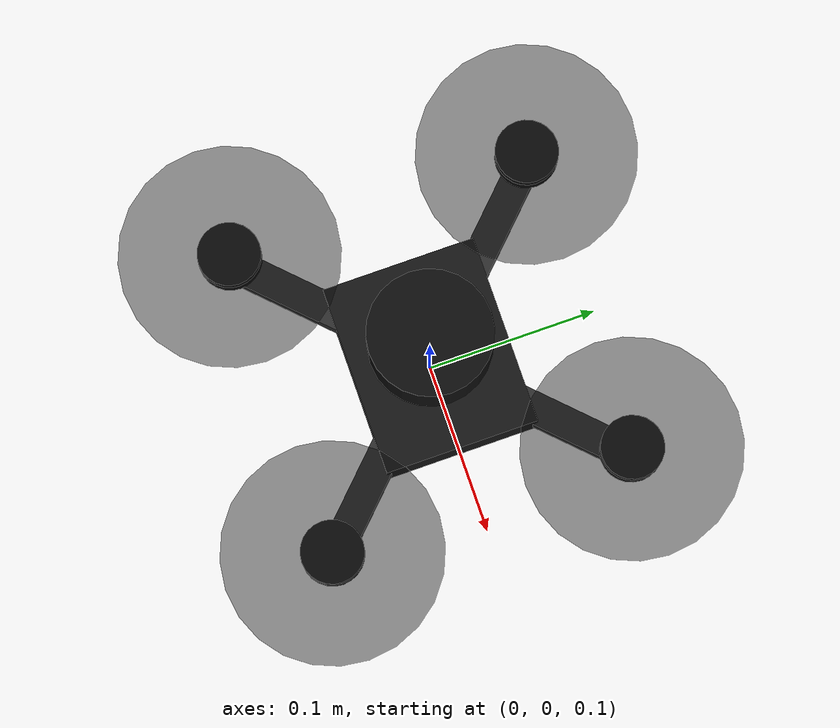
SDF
<?xml version="1.0" encoding="UTF-8"?>

<sdf version="1.9">
  <model name="x250_mid360">
    <pose>0 0 0.14 0 0 0</pose>
    <self_collide>false</self_collide>
    <static>false</static>

    <link name="base_link">
      <inertial>
        <mass>0.45</mass>
        <inertia>
          <ixx>0.0038</ixx>
          <ixy>0.0</ixy>
          <ixz>0.0</ixz>
          <iyy>0.0038</iyy>
          <iyz>0.0</iyz>
          <izz>0.0068</izz>
        </inertia>
      </inertial>
      <gravity>true</gravity>
      <velocity_decay />

      <visual name="body_visual">
        <geometry>
          <box>
            <size>0.11 0.09 0.035</size>
          </box>
        </geometry>
        <material>
          <ambient>0.02 0.02 0.02 1.0</ambient>
          <diffuse>0.08 0.08 0.08 1.0</diffuse>
          <specular>0.2 0.2 0.2 1.0</specular>
        </material>
      </visual>
      <collision name="body_collision">
        <geometry>
          <box>
            <size>0.11 0.09 0.035</size>
          </box>
        </geometry>
      </collision>

      <visual name="arm_forward_left_backward_right">
        <pose>0 0 0 0 0 0.7853981634</pose>
        <geometry>
          <box>
            <size>0.255 0.018 0.014</size>
          </box>
        </geometry>
        <material>
          <ambient>0.1 0.1 0.1 1.0</ambient>
          <diffuse>0.18 0.18 0.18 1.0</diffuse>
        </material>
      </visual>
      <collision name="arm_forward_left_backward_right_collision">
        <pose>0 0 0 0 0 0.7853981634</pose>
        <geometry>
          <box>
            <size>0.255 0.018 0.014</size>
          </box>
        </geometry>
      </collision>

      <visual name="arm_forward_right_backward_left">
        <pose>0 0 0 0 0 -0.7853981634</pose>
        <geometry>
          <box>
            <size>0.255 0.018 0.014</size>
          </box>
        </geometry>
        <material>
          <ambient>0.1 0.1 0.1 1.0</ambient>
          <diffuse>0.18 0.18 0.18 1.0</diffuse>
        </material>
      </visual>
      <collision name="arm_forward_right_backward_left_collision">
        <pose>0 0 0 0 0 -0.7853981634</pose>
        <geometry>
          <box>
            <size>0.255 0.018 0.014</size>
          </box>
        </geometry>
      </collision>

      <sensor name="air_pressure_sensor" type="air_pressure">
        <gz_frame_id>base_link</gz_frame_id>
        <always_on>1</always_on>
        <update_rate>50</update_rate>
        <air_pressure>
          <pressure>
            <noise type="gaussian">
              <mean>0</mean>
              <stddev>3</stddev>
            </noise>
          </pressure>
        </air_pressure>
      </sensor>

      <sensor name="magnetometer_sensor" type="magnetometer">
        <gz_frame_id>base_link</gz_frame_id>
        <always_on>1</always_on>
        <update_rate>100</update_rate>
        <magnetometer>
          <x><noise type="gaussian"><stddev>0.0001</stddev></noise></x>
          <y><noise type="gaussian"><stddev>0.0001</stddev></noise></y>
          <z><noise type="gaussian"><stddev>0.0001</stddev></noise></z>
        </magnetometer>
      </sensor>

      <sensor name="imu_sensor" type="imu">
        <gz_frame_id>base_link</gz_frame_id>
        <always_on>1</always_on>
        <update_rate>250</update_rate>
        <imu>
          <angular_velocity>
            <x><noise type="gaussian"><mean>0.0</mean><stddev>0.0008726646</stddev></noise></x>
            <y><noise type="gaussian"><mean>0.0</mean><stddev>0.0008726646</stddev></noise></y>
            <z><noise type="gaussian"><mean>0.0</mean><stddev>0.0008726646</stddev></noise></z>
          </angular_velocity>
          <linear_acceleration>
            <x><noise type="gaussian"><mean>0.0</mean><stddev>0.00637</stddev></noise></x>
            <y><noise type="gaussian"><mean>0.0</mean><stddev>0.00637</stddev></noise></y>
            <z><noise type="gaussian"><mean>0.0</mean><stddev>0.00686</stddev></noise></z>
          </linear_acceleration>
        </imu>
      </sensor>

      <sensor name="navsat_sensor" type="navsat">
        <gz_frame_id>base_link</gz_frame_id>
        <always_on>1</always_on>
        <update_rate>30</update_rate>
      </sensor>
    </link>

    <link name="rotor_0">
      <pose>0.0884 -0.0884 0.030 0 0 0</pose>
      <inertial>
        <mass>0.012</mass>
        <inertia>
          <ixx>1.0e-5</ixx>
          <iyy>1.0e-5</iyy>
          <izz>2.0e-5</izz>
        </inertia>
      </inertial>
      <visual name="motor_visual">
        <geometry><cylinder><radius>0.018</radius><length>0.018</length></cylinder></geometry>
        <material><ambient>0.03 0.03 0.03 1</ambient><diffuse>0.03 0.03 0.03 1</diffuse></material>
      </visual>
      <visual name="prop_visual">
        <geometry><cylinder><radius>0.063</radius><length>0.002</length></cylinder></geometry>
        <material><ambient>0.02 0.02 0.02 0.45</ambient><diffuse>0.02 0.02 0.02 0.45</diffuse></material>
      </visual>
      <collision name="prop_collision">
        <geometry><cylinder><radius>0.063</radius><length>0.002</length></cylinder></geometry>
      </collision>
    </link>

    <link name="rotor_1">
      <pose>-0.0884 0.0884 0.030 0 0 0</pose>
      <inertial>
        <mass>0.012</mass>
        <inertia>
          <ixx>1.0e-5</ixx>
          <iyy>1.0e-5</iyy>
          <izz>2.0e-5</izz>
        </inertia>
      </inertial>
      <visual name="motor_visual">
        <geometry><cylinder><radius>0.018</radius><length>0.018</length></cylinder></geometry>
        <material><ambient>0.03 0.03 0.03 1</ambient><diffuse>0.03 0.03 0.03 1</diffuse></material>
      </visual>
      <visual name="prop_visual">
        <geometry><cylinder><radius>0.063</radius><length>0.002</length></cylinder></geometry>
        <material><ambient>0.02 0.02 0.02 0.45</ambient><diffuse>0.02 0.02 0.02 0.45</diffuse></material>
      </visual>
      <collision name="prop_collision">
        <geometry><cylinder><radius>0.063</radius><length>0.002</length></cylinder></geometry>
      </collision>
    </link>

    <link name="rotor_2">
      <pose>0.0884 0.0884 0.030 0 0 0</pose>
      <inertial>
        <mass>0.012</mass>
        <inertia>
          <ixx>1.0e-5</ixx>
          <iyy>1.0e-5</iyy>
          <izz>2.0e-5</izz>
        </inertia>
      </inertial>
      <visual name="motor_visual">
        <geometry><cylinder><radius>0.018</radius><length>0.018</length></cylinder></geometry>
        <material><ambient>0.03 0.03 0.03 1</ambient><diffuse>0.03 0.03 0.03 1</diffuse></material>
      </visual>
      <visual name="prop_visual">
        <geometry><cylinder><radius>0.063</radius><length>0.002</length></cylinder></geometry>
        <material><ambient>0.02 0.02 0.02 0.45</ambient><diffuse>0.02 0.02 0.02 0.45</diffuse></material>
      </visual>
      <collision name="prop_collision">
        <geometry><cylinder><radius>0.063</radius><length>0.002</length></cylinder></geometry>
      </collision>
    </link>

    <link name="rotor_3">
      <pose>-0.0884 -0.0884 0.030 0 0 0</pose>
      <inertial>
        <mass>0.012</mass>
        <inertia>
          <ixx>1.0e-5</ixx>
          <iyy>1.0e-5</iyy>
          <izz>2.0e-5</izz>
        </inertia>
      </inertial>
      <visual name="motor_visual">
        <geometry><cylinder><radius>0.018</radius><length>0.018</length></cylinder></geometry>
        <material><ambient>0.03 0.03 0.03 1</ambient><diffuse>0.03 0.03 0.03 1</diffuse></material>
      </visual>
      <visual name="prop_visual">
        <geometry><cylinder><radius>0.063</radius><length>0.002</length></cylinder></geometry>
        <material><ambient>0.02 0.02 0.02 0.45</ambient><diffuse>0.02 0.02 0.02 0.45</diffuse></material>
      </visual>
      <collision name="prop_collision">
        <geometry><cylinder><radius>0.063</radius><length>0.002</length></cylinder></geometry>
      </collision>
    </link>

    <joint name="rotor_0_joint" type="revolute">
      <parent>base_link</parent>
      <child>rotor_0</child>
      <axis><xyz>0 0 1</xyz><limit><lower>-1e+16</lower><upper>1e+16</upper></limit></axis>
    </joint>
    <joint name="rotor_1_joint" type="revolute">
      <parent>base_link</parent>
      <child>rotor_1</child>
      <axis><xyz>0 0 1</xyz><limit><lower>-1e+16</lower><upper>1e+16</upper></limit></axis>
    </joint>
    <joint name="rotor_2_joint" type="revolute">
      <parent>base_link</parent>
      <child>rotor_2</child>
      <axis><xyz>0 0 1</xyz><limit><lower>-1e+16</lower><upper>1e+16</upper></limit></axis>
    </joint>
    <joint name="rotor_3_joint" type="revolute">
      <parent>base_link</parent>
      <child>rotor_3</child>
      <axis><xyz>0 0 1</xyz><limit><lower>-1e+16</lower><upper>1e+16</upper></limit></axis>
    </joint>

    <link name="mid360_link">
      <pose relative_to="base_link">0.0 0.0 0.090 0 0 0</pose>
      <inertial>
        <mass>0.265</mass>
        <inertia>
          <ixx>0.0004</ixx>
          <iyy>0.0004</iyy>
          <izz>0.0004</izz>
          <ixy>0.0</ixy>
          <ixz>0.0</ixz>
          <iyz>0.0</iyz>
        </inertia>
      </inertial>
      <visual name="mid360_visual">
        <geometry><cylinder><radius>0.035</radius><length>0.045</length></cylinder></geometry>
        <material><ambient>0.05 0.05 0.05 1</ambient><diffuse>0.05 0.05 0.05 1</diffuse></material>
      </visual>
      <collision name="mid360_collision">
        <geometry><cylinder><radius>0.035</radius><length>0.045</length></cylinder></geometry>
      </collision>
      <sensor name="mid360_lidar" type="gpu_lidar">
        <pose>0 0 0 0 0 0</pose>
        <topic>mid360/points</topic>
        <update_rate>10</update_rate>
        <always_on>true</always_on>
        <visualize>true</visualize>
        <ray>
          <scan>
            <horizontal>
              <samples>720</samples>
              <resolution>1</resolution>
              <min_angle>-3.141592653589793</min_angle>
              <max_angle>3.141592653589793</max_angle>
            </horizontal>
            <vertical>
              <samples>64</samples>
              <resolution>1</resolution>
              <min_angle>-0.1221730476</min_angle>
              <max_angle>0.9075712110</max_angle>
            </vertical>
          </scan>
          <range>
            <min>0.1</min>
            <max>40.0</max>
            <resolution>0.01</resolution>
          </range>
          <noise>
            <type>gaussian</type>
            <mean>0.0</mean>
            <stddev>0.01</stddev>
          </noise>
        </ray>
      </sensor>
    </link>

    <joint name="mid360_joint" type="fixed">
      <parent>base_link</parent>
      <child>mid360_link</child>
      <pose relative_to="base_link">0.0 0.0 0.090 0 0 0</pose>
    </joint>

    <plugin filename="gz-sim-multicopter-motor-model-system"
      name="gz::sim::systems::MulticopterMotorModel">
      <jointName>rotor_0_joint</jointName>
      <linkName>rotor_0</linkName>
      <turningDirection>ccw</turningDirection>
      <timeConstantUp>0.0125</timeConstantUp>
      <timeConstantDown>0.025</timeConstantDown>
      <maxRotVelocity>1100.0</maxRotVelocity>
      <motorConstant>2.50e-06</motorConstant>
      <momentConstant>0.016</momentConstant>
      <commandSubTopic>command/motor_speed</commandSubTopic>
      <motorNumber>0</motorNumber>
      <rotorDragCoefficient>3.0e-05</rotorDragCoefficient>
      <rollingMomentCoefficient>5.0e-07</rollingMomentCoefficient>
      <rotorVelocitySlowdownSim>10</rotorVelocitySlowdownSim>
      <motorType>velocity</motorType>
    </plugin>
    <plugin filename="gz-sim-multicopter-motor-model-system"
      name="gz::sim::systems::MulticopterMotorModel">
      <jointName>rotor_1_joint</jointName>
      <linkName>rotor_1</linkName>
      <turningDirection>ccw</turningDirection>
      <timeConstantUp>0.0125</timeConstantUp>
      <timeConstantDown>0.025</timeConstantDown>
      <maxRotVelocity>1100.0</maxRotVelocity>
      <motorConstant>2.50e-06</motorConstant>
      <momentConstant>0.016</momentConstant>
      <commandSubTopic>command/motor_speed</commandSubTopic>
      <motorNumber>1</motorNumber>
      <rotorDragCoefficient>3.0e-05</rotorDragCoefficient>
      <rollingMomentCoefficient>5.0e-07</rollingMomentCoefficient>
      <rotorVelocitySlowdownSim>10</rotorVelocitySlowdownSim>
      <motorType>velocity</motorType>
    </plugin>
    <plugin filename="gz-sim-multicopter-motor-model-system"
      name="gz::sim::systems::MulticopterMotorModel">
      <jointName>rotor_2_joint</jointName>
      <linkName>rotor_2</linkName>
      <turningDirection>cw</turningDirection>
      <timeConstantUp>0.0125</timeConstantUp>
      <timeConstantDown>0.025</timeConstantDown>
      <maxRotVelocity>1100.0</maxRotVelocity>
      <motorConstant>2.50e-06</motorConstant>
      <momentConstant>0.016</momentConstant>
      <commandSubTopic>command/motor_speed</commandSubTopic>
      <motorNumber>2</motorNumber>
      <rotorDragCoefficient>3.0e-05</rotorDragCoefficient>
      <rollingMomentCoefficient>5.0e-07</rollingMomentCoefficient>
      <rotorVelocitySlowdownSim>10</rotorVelocitySlowdownSim>
      <motorType>velocity</motorType>
    </plugin>
    <plugin filename="gz-sim-multicopter-motor-model-system"
      name="gz::sim::systems::MulticopterMotorModel">
      <jointName>rotor_3_joint</jointName>
      <linkName>rotor_3</linkName>
      <turningDirection>cw</turningDirection>
      <timeConstantUp>0.0125</timeConstantUp>
      <timeConstantDown>0.025</timeConstantDown>
      <maxRotVelocity>1100.0</maxRotVelocity>
      <motorConstant>2.50e-06</motorConstant>
      <momentConstant>0.016</momentConstant>
      <commandSubTopic>command/motor_speed</commandSubTopic>
      <motorNumber>3</motorNumber>
      <rotorDragCoefficient>3.0e-05</rotorDragCoefficient>
      <rollingMomentCoefficient>5.0e-07</rollingMomentCoefficient>
      <rotorVelocitySlowdownSim>10</rotorVelocitySlowdownSim>
      <motorType>velocity</motorType>
    </plugin>

    <plugin filename="gz-sim-odometry-publisher-system"
      name="gz::sim::systems::OdometryPublisher">
      <dimensions>3</dimensions>
    </plugin>

    <plugin filename="MotorFailurePlugin"
      name="gz::sim::systems::MotorFailureSystem">
    </plugin>
  </model>
</sdf>
